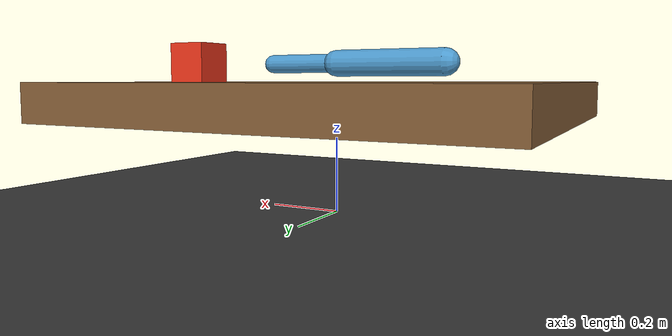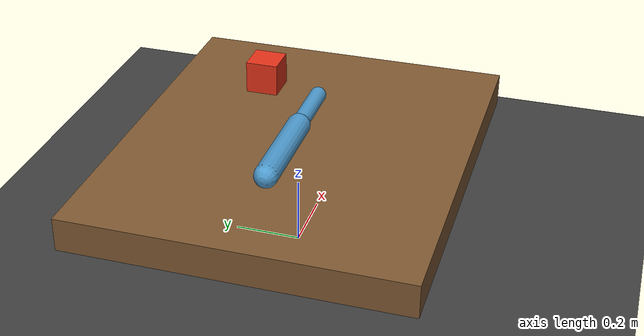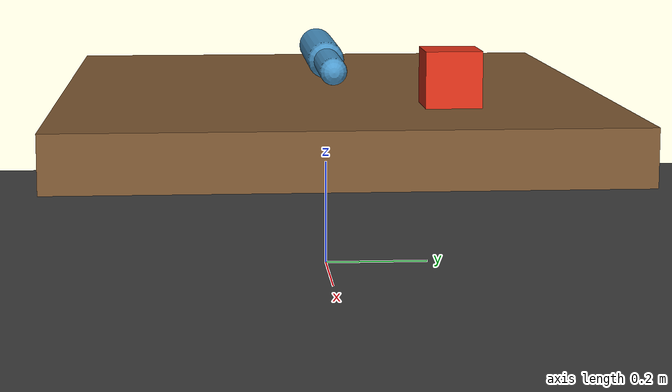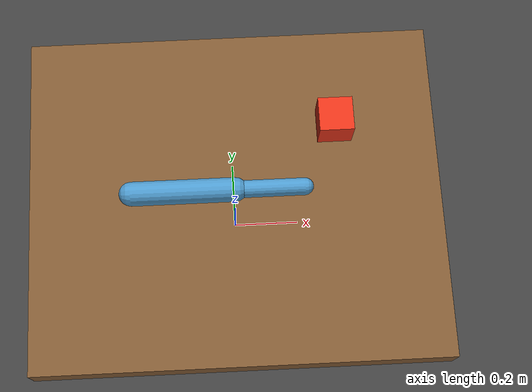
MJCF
<mujoco model="loop_camera_arm">
  <compiler angle="radian"/>
  <option timestep="0.002"/>
  <visual><global offwidth="1024" offheight="1024"/></visual>
  <default><joint damping="1"/><geom rgba="0.3 0.6 0.8 1"/></default>
  <worldbody>
    <light pos="0 -1 3"/>
    <geom name="floor" type="plane" size="3 3 0.1" rgba="0.25 0.25 0.25 1"/>
    <body name="table" pos="0 0 0.3"><geom name="table_geom" type="box" size="0.6 0.5 0.05" rgba="0.5 0.35 0.2 1"/></body>
    <body name="arm" pos="-0.3 0 0.4">
      <joint name="shoulder" type="hinge" axis="0 0 1" range="-1.5 1.5"/>
      <geom type="capsule" fromto="0 0 0 0.3 0 0" size="0.035" mass="0.2"/>
      <body name="wrist" pos="0.3 0 0">
        <joint name="elbow" type="hinge" axis="0 0 1" range="-1.5 1.5"/>
        <geom type="capsule" fromto="0 0 0 0.2 0 0" size="0.025" mass="0.1"/>
        <site name="tip" pos="0.2 0 0" size="0.01"/>
      </body>
    </body>
    <body name="cube" pos="0.3 0.2 0.4"><freejoint name="cube_free"/><geom name="cube_geom" type="box" size="0.05 0.05 0.05" mass="0.05" rgba="0.9 0.2 0.1 1"/></body>
  </worldbody>
  <actuator>
    <position name="shoulder_target" joint="shoulder" kp="10" ctrlrange="-1.5 1.5"/>
    <position name="elbow_target" joint="elbow" kp="10" ctrlrange="-1.5 1.5"/>
  </actuator>
</mujoco>
